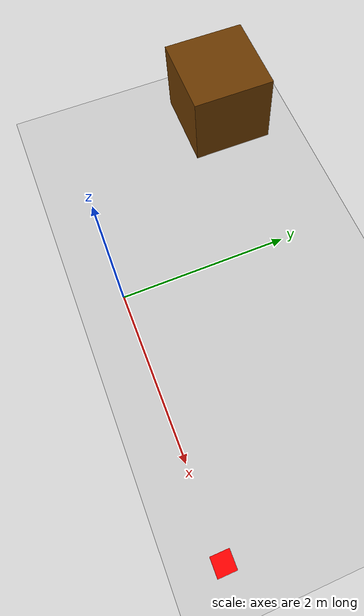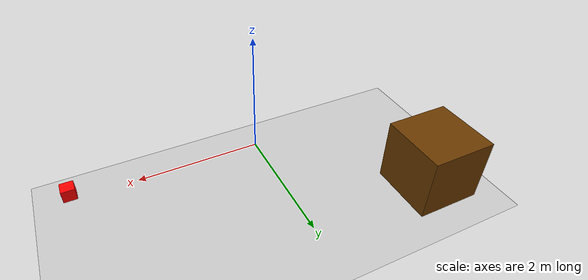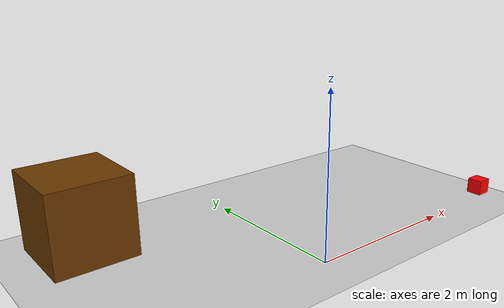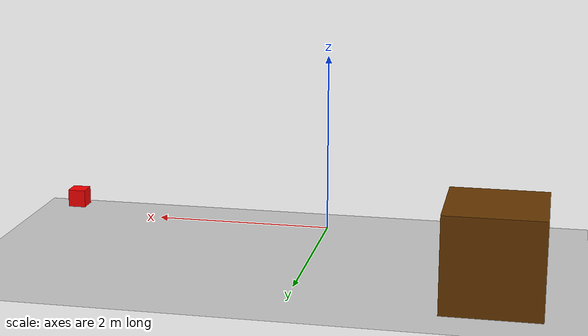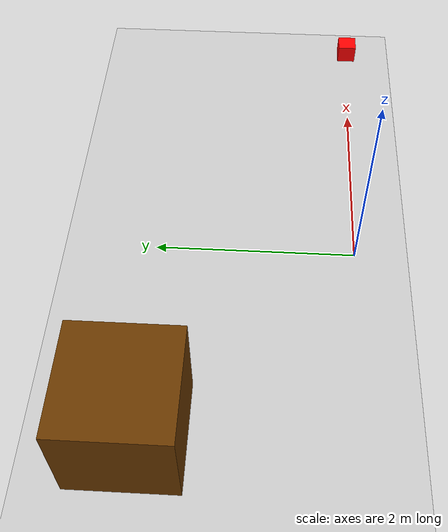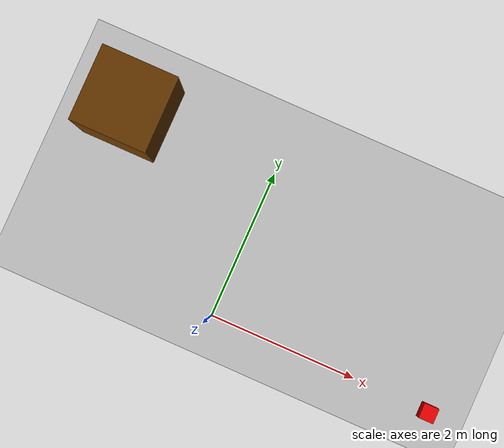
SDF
<?xml version="1.0" ?>
<sdf version="1.5">
  <world name="default">

    <physics type="ode">
      <max_step_size>0.0002</max_step_size>
      <real_time_factor>1</real_time_factor>
      <real_time_update_rate>5000</real_time_update_rate>
      <gravity>0 0 -9.81</gravity>
      <ode>
        <solver>
          <type>quick</type>
          <iters>50</iters>
          <sor>1.3</sor>
        </solver>
        <constraints>
          <cfm>0.0</cfm>
          <erp>0.2</erp>
          <contact_max_correcting_vel>10.0</contact_max_correcting_vel>
          <contact_surface_layer>0.001</contact_surface_layer>
        </constraints>
      </ode>
    </physics>

    <scene>
      <sky>
        <clouds>
          <speed>12</speed>
        </clouds>
      </sky>
    </scene>

    <!-- A global light source -->
    <include>
      <uri>model://sun</uri>
    </include>

    <!-- A ground plane -->
    <include>
      <uri>model://ground_plane</uri>
    </include>

    <!-- environment blocks, obstacles or stairs -->
    <model name="static_environment">
      <static>true</static>
      <link name="static_box">
        <pose>-2 2 0.5 0 0 0</pose>
        <collision name="static_box_collision">
          <geometry>
            <box>
              <size>1 1 1</size>
            </box>
          </geometry>
        </collision>
        <visual name="static_box_visual">
          <geometry>
            <box>
              <size>1 1 1</size>
            </box>
          </geometry>
          <material>
            <ambient>0.2 0.2 0.2 1.0</ambient>
            <diffuse>.421 0.225 0.0 1.0</diffuse>
          </material>
        </visual>
      </link>
    </model>

    <!-- red cube target: has gravity, pure red, and is extremely hard for the dog to push -->
    <model name="red_cube_target">
      <static>false</static>

      <!-- dog spawns at world origin (0,0,0); place cube farther ahead on +x -->
      <pose>3.0 0 0.2 0 0 0</pose>

      <link name="link">
        <!-- heavy mass so the dog can't push it -->
        <inertial>
          <mass>200.0</mass>
          <inertia>
            <ixx>10</ixx> <ixy>0</ixy> <ixz>0</ixz>
            <iyy>10</iyy> <iyz>0</iyz>
            <izz>10</izz>
          </inertia>
        </inertial>

        <collision name="collision">
          <geometry>
            <box>
              <size>0.2 0.2 0.2</size>
            </box>
          </geometry>
          <!-- high friction so it won't slide easily -->
          <surface>
            <friction>
              <ode>
                <mu>5.0</mu>
                <mu2>5.0</mu2>
              </ode>
            </friction>
          </surface>
        </collision>

        <visual name="visual">
          <geometry>
            <box>
              <size>0.2 0.2 0.2</size>
            </box>
          </geometry>
          <material>
            <ambient>1 0 0 1</ambient>
            <diffuse>1 0 0 1</diffuse>
            <specular>0 0 0 1</specular>
            <emissive>0 0 0 1</emissive>
          </material>
        </visual>
      </link>
    </model>

  </world>
</sdf>
